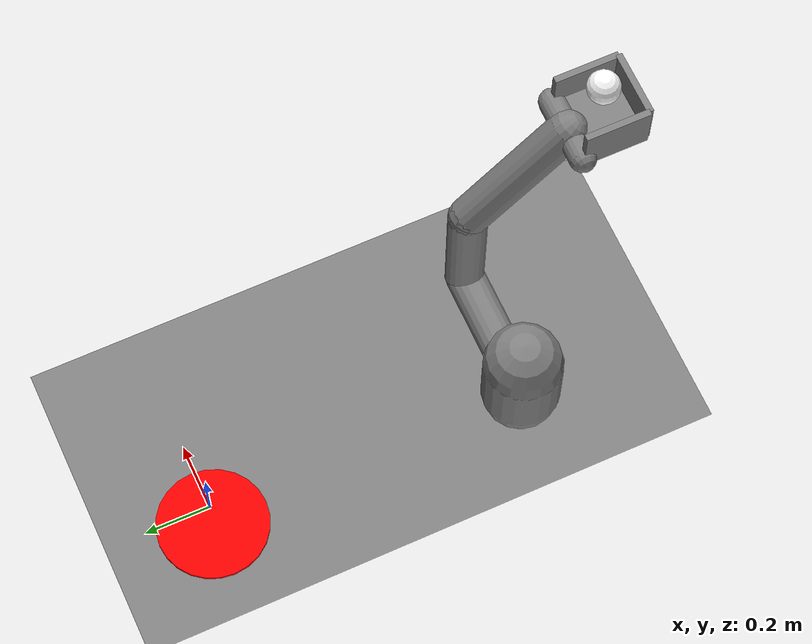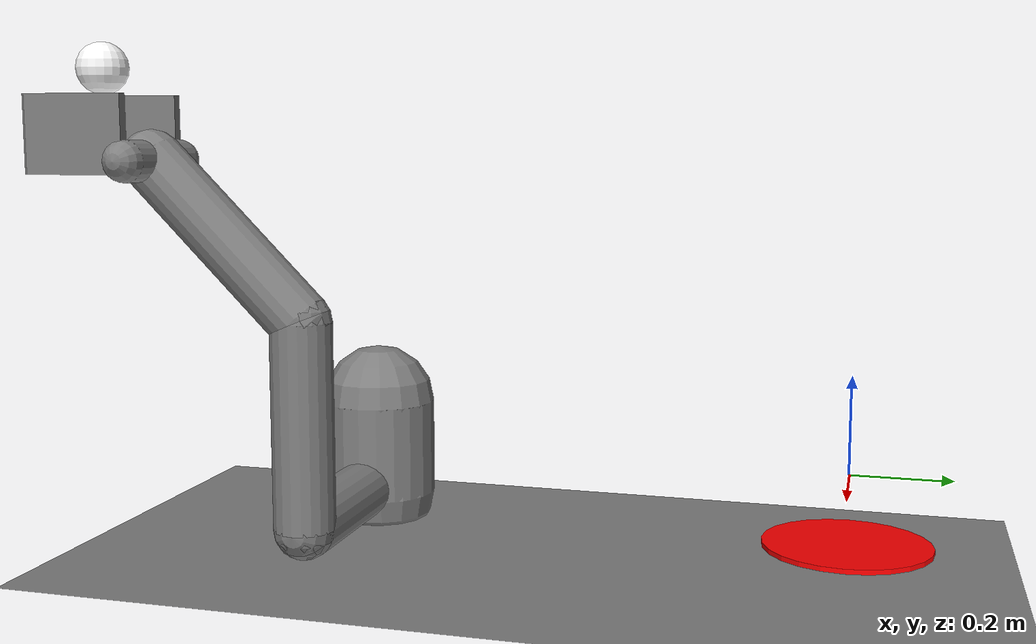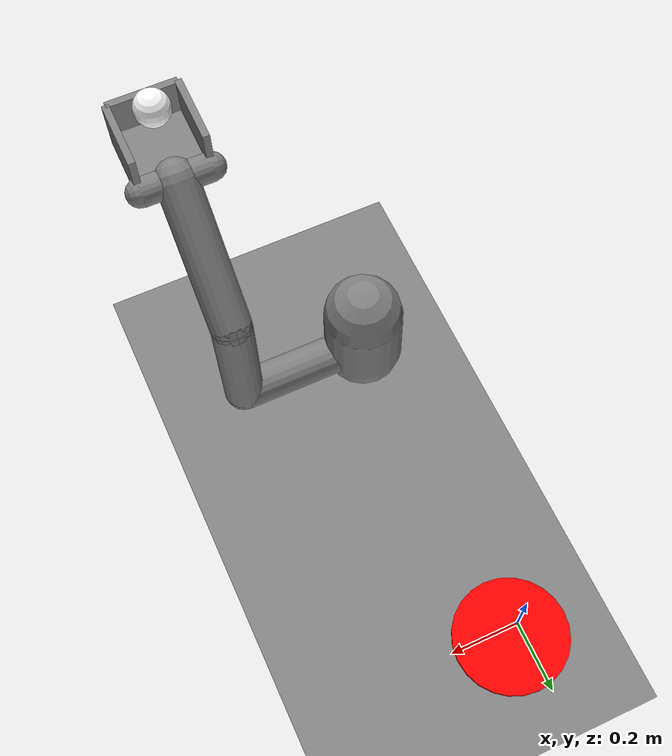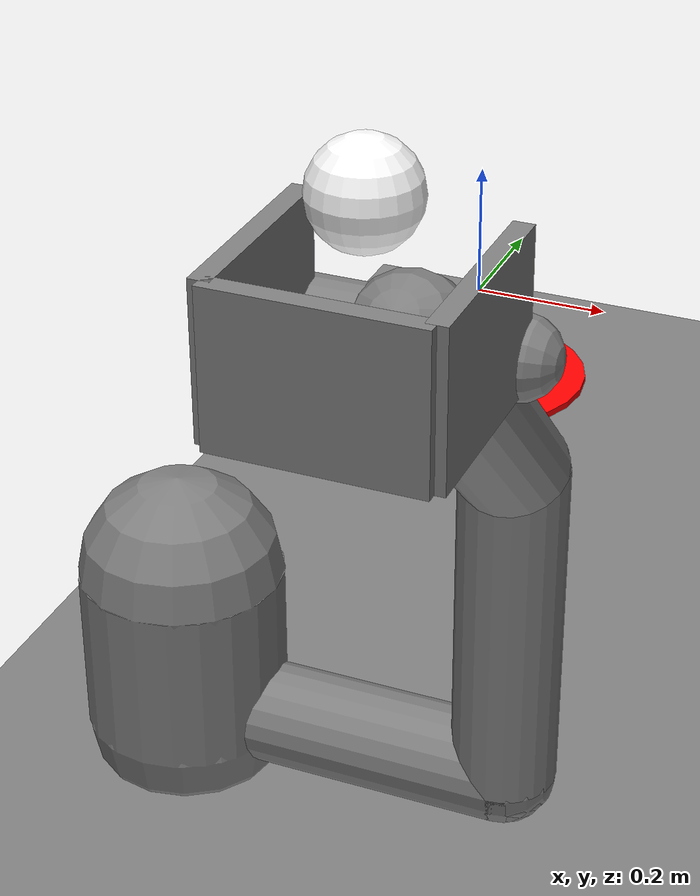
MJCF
<mujoco model="arm3d">
    <compiler inertiafromgeom="true" angle="radian" coordinate="local" />
    <option timestep="0.01" gravity="0 0 -2.81" iterations="20" integrator="Euler" />

    <default>
        <joint armature='0.04' damping="1" limited="true"/>
        <geom friction=".8 .1 .1" density="300" margin="0.002" condim="1" contype="1" conaffinity="1"/>
    </default>

    <worldbody>
        <light diffuse=".5 .5 .5" pos="0 0 3" dir="0 0 -1"/>
        <geom type="plane" pos="0 0.5 -0.15" size="2 2 0.1" contype="1" conaffinity="1"/>

        <body name="palm" pos="0 -1 0">
            <geom type="capsule" fromto="0 0 -0.1 0 0 0.1" size="0.12"/>
            <body name="proximal_1" pos="0 0 -0.075" >
                <geom type="capsule"  fromto="0 0 0 0.4 0 0" size="0.06" contype="1" conaffinity="1"/>
                <body name="distal_1" pos="0.4 0 0">
                    <joint name="distal_j_1" type="hinge" pos="0 0 0" axis="0 0 1" range="-2.3213 2.3" damping="1.0"/>
                    <geom type="capsule"  fromto="0 0 0 0 0 0.4" size="0.06" contype="1" conaffinity="1"/>
                    <body name="distal_2" pos="0 0 0.4" axisangle="0 0 1 -1.57">
                        <joint name="distal_j_2" type="hinge" pos="0 0 0" axis="0 1 0" range="-0.785 0" damping="1.0"/>
                        <geom type="capsule" fromto="0 0 0 0.3 0 0.3" size="0.06" contype="1" conaffinity="1"/>
                        <body name="distal_4" pos="0.3 0 0.3">

                            <geom type="capsule" fromto="0 -0.1 0 0 0.1 0" size="0.04" contype="1" conaffinity="1" />
                            <body name="holder" pos="0.1 0 0">
                                <geom type="box" pos="0 0 0.01" size="0.1 0.1 0.01" contype="1" conaffinity="0"/>
                                <geom type="box" pos="0.0 0.1 0.05" size="0.1 0.01 0.075" contype="1" conaffinity="0"/>
                                <geom type="box" pos="0.0 -0.1 0.05" size="0.1 0.01 0.075" contype="1" conaffinity="0"/>
                                <geom type="box" pos="0.1 0 0.05" size="0.01 0.1 0.075" contype="1" conaffinity="0"/>
                            </body>

                        </body>
                    </body>
                </body>
            </body>
        </body>

        <body name="goal" pos="0 0 -0.145">
            <geom rgba="1. 0. 0. 1" type="cylinder" size="0.17 0.005 0.2" density='0.00001' contype="0" conaffinity="0"/>
            <joint name="goal_slidey" type="slide" pos="0 0 0" axis="0 1 0" range="-10.3213 10.3" damping="0.5"/>
            <joint name="goal_slidex" type="slide" pos="0 0 0" axis="1 0 0" range="-10.3213 10.3" damping="0.5"/>
        </body>

        <body name="ball" pos="0.40 -1.4 0.8">
            <geom rgba="1. 1. 1. 1" type="sphere" size="0.05 0.05 0.1" density='0.00001' contype="1" conaffinity="1"/>
            <joint name="ball_free" type="free" armature='0' damping="0" limited="false"/>
        </body>

    </worldbody>

    <actuator>
        <motor joint="distal_j_1" ctrlrange="-3 3" ctrllimited="true"/>
        <motor joint="distal_j_2" ctrlrange="-5 5" ctrllimited="true"/>
    </actuator>
</mujoco>
